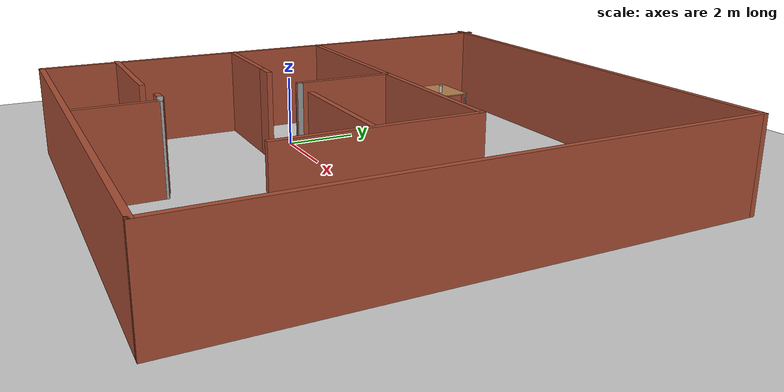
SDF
<sdf version="1.7">
 <world name="default">
  <model name="ground_plane">
   <static>1</static>
   <link name="link">
    <collision name="collision">
     <geometry><plane><normal>0 0 1</normal><size>100 100</size></plane></geometry>
     <surface><friction><ode><mu>100</mu><mu2>50</mu2></ode></friction></surface>
    </collision>
    <visual name="visual">
     <cast_shadows>0</cast_shadows>
     <geometry><plane><normal>0 0 1</normal><size>100 100</size></plane></geometry>
     <material>
      <script><uri>file://media/materials/scripts/gazebo.material</uri><name>Gazebo/Grey</name></script>
     </material>
    </visual>
   </link>
  </model>
  <model name="test">
   <pose>3.88587 0.535286 0 0 -0 0</pose>
   <link name="Wall_1">
    <collision name="Wall_1_Collision">
     <geometry><box><size>2.75 0.15 2.5</size></box></geometry>
     <pose>0 0 1.25 0 -0 0</pose>
    </collision>
    <visual name="Wall_1_Visual">
     <pose>0 0 1.25 0 -0 0</pose>
     <geometry><box><size>2.75 0.15 2.5</size></box></geometry>
     <material>
      <script><uri>file://media/materials/scripts/gazebo.material</uri><name>Gazebo/Bricks</name></script>
      <ambient>1 1 1 1</ambient>
     </material>
     <meta><layer>0</layer></meta>
    </visual>
    <pose>-4.75 -1.55 0 0 -0 3.14159</pose>
   </link>
   <link name="Wall_10">
    <collision name="Wall_10_Collision">
     <geometry><box><size>12.5 0.15 2.5</size></box></geometry>
     <pose>0 0 1.25 0 -0 0</pose>
    </collision>
    <visual name="Wall_10_Visual">
     <pose>0 0 1.25 0 -0 0</pose>
     <geometry><box><size>12.5 0.15 2.5</size></box></geometry>
     <material>
      <script><uri>file://media/materials/scripts/gazebo.material</uri><name>Gazebo/Bricks</name></script>
      <ambient>1 1 1 1</ambient>
     </material>
     <meta><layer>0</layer></meta>
    </visual>
    <pose>0.125 -7.15 0 0 -0 0</pose>
   </link>
   <link name="Wall_11">
    <collision name="Wall_11_Collision">
     <geometry><box><size>14.25 0.15 2.5</size></box></geometry>
     <pose>0 0 1.25 0 -0 0</pose>
    </collision>
    <visual name="Wall_11_Visual">
     <pose>0 0 1.25 0 -0 0</pose>
     <geometry><box><size>14.25 0.15 2.5</size></box></geometry>
     <material>
      <script><uri>file://media/materials/scripts/gazebo.material</uri><name>Gazebo/Bricks</name></script>
      <ambient>1 1 1 1</ambient>
     </material>
     <meta><layer>0</layer></meta>
    </visual>
    <pose>6.3 -0.1 0 0 -0 1.5708</pose>
   </link>
   <link name="Wall_12">
    <collision name="Wall_12_Collision">
     <geometry><box><size>12.75 0.15 2.5</size></box></geometry>
     <pose>0 0 1.25 0 -0 0</pose>
    </collision>
    <visual name="Wall_12_Visual">
     <pose>0 0 1.25 0 -0 0</pose>
     <geometry><box><size>12.75 0.15 2.5</size></box></geometry>
     <material>
      <script><uri>file://media/materials/scripts/gazebo.material</uri><name>Gazebo/Bricks</name></script>
      <ambient>1 1 1 1</ambient>
     </material>
     <meta><layer>0</layer></meta>
    </visual>
    <pose>-0 6.95 0 0 -0 3.14159</pose>
   </link>
   <link name="Wall_14">
    <collision name="Wall_14_Collision">
     <geometry><box><size>6 0.15 2.5</size></box></geometry>
     <pose>0 0 1.25 0 -0 0</pose>
    </collision>
    <visual name="Wall_14_Visual">
     <pose>0 0 1.25 0 -0 0</pose>
     <geometry><box><size>6 0.15 2.5</size></box></geometry>
     <material>
      <script><uri>file://media/materials/scripts/gazebo.material</uri><name>Gazebo/Bricks</name></script>
      <ambient>1 1 1 1</ambient>
     </material>
     <meta><layer>0</layer></meta>
    </visual>
    <pose>-6.05 4.225 0 0 -0 1.5708</pose>
   </link>
   <link name="Wall_16">
    <collision name="Wall_16_Collision">
     <geometry><box><size>0.75 0.15 2.5</size></box></geometry>
     <pose>0 0 1.25 0 -0 0</pose>
    </collision>
    <visual name="Wall_16_Visual">
     <pose>0 0 1.25 0 -0 0</pose>
     <geometry><box><size>0.75 0.15 2.5</size></box></geometry>
     <material>
      <script><uri>file://media/materials/scripts/gazebo.material</uri><name>Gazebo/Bricks</name></script>
      <ambient>1 1 1 1</ambient>
     </material>
     <meta><layer>0</layer></meta>
    </visual>
    <pose>-3.15 -1.55 0 0 -0 0</pose>
   </link>
   <link name="Wall_18">
    <collision name="Wall_18_Collision">
     <geometry><box><size>3.5 0.15 2.5</size></box></geometry>
     <pose>0 0 1.25 0 -0 0</pose>
    </collision>
    <visual name="Wall_18_Visual">
     <pose>0 0 1.25 0 -0 0</pose>
     <geometry><box><size>3.5 0.15 2.5</size></box></geometry>
     <material>
      <script><uri>file://media/materials/scripts/gazebo.material</uri><name>Gazebo/Bricks</name></script>
      <ambient>1 1 1 1</ambient>
     </material>
     <meta><layer>0</layer></meta>
    </visual>
    <pose>1.62011 -1.42426 0 0 -0 3.14159</pose>
   </link>
   <link name="Wall_2">
    <collision name="Wall_2_Collision">
     <geometry><box><size>3 0.15 2.5</size></box></geometry>
     <pose>0 0 1.25 0 -0 0</pose>
    </collision>
    <visual name="Wall_2_Visual">
     <pose>0 0 1.25 0 -0 0</pose>
     <geometry><box><size>3 0.15 2.5</size></box></geometry>
     <material>
      <script><uri>file://media/materials/scripts/gazebo.material</uri><name>Gazebo/Bricks</name></script>
      <ambient>1 1 1 1</ambient>
     </material>
     <meta><layer>0</layer></meta>
    </visual>
    <pose>-6.05 -0.125 0 0 -0 1.5708</pose>
   </link>
   <link name="Wall_20">
    <collision name="Wall_20_Collision">
     <geometry><box><size>0.15 0.15 2.5</size></box></geometry>
     <pose>0 0 1.25 0 -0 0</pose>
    </collision>
    <visual name="Wall_20_Visual">
     <pose>0 0 1.25 0 -0 0</pose>
     <geometry><box><size>0.15 0.15 2.5</size></box></geometry>
     <material>
      <script><uri>file://media/materials/scripts/gazebo.material</uri><name>Gazebo/Grey</name></script>
      <ambient>1 1 1 1</ambient>
     </material>
     <meta><layer>0</layer></meta>
    </visual>
    <pose>-1.2 -1.3 0 0 -0 0</pose>
   </link>
   <link name="Wall_22">
    <collision name="Wall_22_Collision">
     <geometry><box><size>3.5 0.15 2.5</size></box></geometry>
     <pose>0 0 1.25 0 -0 0</pose>
    </collision>
    <visual name="Wall_22_Visual">
     <pose>0 0 1.25 0 -0 0</pose>
     <geometry><box><size>3.5 0.15 2.5</size></box></geometry>
     <material>
      <script><uri>file://media/materials/scripts/gazebo.material</uri><name>Gazebo/Bricks</name></script>
      <ambient>1 1 1 1</ambient>
     </material>
     <meta><layer>0</layer></meta>
    </visual>
    <pose>-4.48918 -5.04855 0 0 -0 0</pose>
   </link>
   <link name="Wall_25">
    <collision name="Wall_25_Collision">
     <geometry><box><size>2.25 0.15 2.5</size></box></geometry>
     <pose>0 0 1.25 0 -0 0</pose>
    </collision>
    <visual name="Wall_25_Visual">
     <pose>0 0 1.25 0 -0 0</pose>
     <geometry><box><size>2.25 0.15 2.5</size></box></geometry>
     <material>
      <script><uri>file://media/materials/scripts/gazebo.material</uri><name>Gazebo/Bricks</name></script>
      <ambient>1 1 1 1</ambient>
     </material>
     <meta><layer>0</layer></meta>
    </visual>
    <pose>-0.904959 -6.06179 0 0 -0 1.5708</pose>
   </link>
   <link name="Wall_26">
    <collision name="Wall_26_Collision">
     <geometry><box><size>0.5 0.15 2.5</size></box></geometry>
     <pose>0 0 1.25 0 -0 0</pose>
    </collision>
    <visual name="Wall_26_Visual">
     <pose>0 0 1.25 0 -0 0</pose>
     <geometry><box><size>0.5 0.15 2.5</size></box></geometry>
     <material>
      <script><uri>file://media/materials/scripts/gazebo.material</uri><name>Gazebo/Grey</name></script>
      <ambient>1 1 1 1</ambient>
     </material>
     <meta><layer>0</layer></meta>
    </visual>
    <pose>-1.074 -4.96649 0 0 -0 2.87979</pose>
   </link>
   <link name="Wall_27">
    <collision name="Wall_27_Collision">
     <geometry><box><size>0.5 0.15 2.5</size></box></geometry>
     <pose>0 0 1.25 0 -0 0</pose>
    </collision>
    <visual name="Wall_27_Visual">
     <pose>0 0 1.25 0 -0 0</pose>
     <geometry><box><size>0.5 0.15 2.5</size></box></geometry>
     <material>
      <script><uri>file://media/materials/scripts/gazebo.material</uri><name>Gazebo/Bricks</name></script>
      <ambient>1 1 1 1</ambient>
     </material>
     <meta><layer>0</layer></meta>
    </visual>
    <pose>-1.41803 -4.9212 0 0 -0 3.14159</pose>
   </link>
   <link name="Wall_3">
    <collision name="Wall_3_Collision">
     <geometry><box><size>5 0.15 2.5</size></box></geometry>
     <pose>0 0 1.25 0 -0 0</pose>
    </collision>
    <visual name="Wall_3_Visual">
     <pose>0 0 1.25 0 -0 0</pose>
     <geometry><box><size>5 0.15 2.5</size></box></geometry>
     <material>
      <script><uri>file://media/materials/scripts/gazebo.material</uri><name>Gazebo/Bricks</name></script>
      <ambient>1 1 1 1</ambient>
     </material>
     <meta><layer>0</layer></meta>
    </visual>
    <pose>-3.625 1.3 0 0 -0 0</pose>
   </link>
   <link name="Wall_4">
    <collision name="Wall_4_Collision">
     <geometry><box><size>2.75 0.15 2.5</size></box></geometry>
     <pose>0 0 1.25 0 -0 0</pose>
    </collision>
    <visual name="Wall_4_Visual">
     <pose>0 0 1.25 0 -0 0</pose>
     <geometry><box><size>2.75 0.15 2.5</size></box></geometry>
     <material>
      <script><uri>file://media/materials/scripts/gazebo.material</uri><name>Gazebo/Bricks</name></script>
      <ambient>1 1 1 1</ambient>
     </material>
     <meta><layer>0</layer></meta>
    </visual>
    <pose>-1.2 0 0 0 -0 -1.5708</pose>
   </link>
   <link name="Wall_6">
    <collision name="Wall_6_Collision">
     <geometry><box><size>4.75 0.15 2.5</size></box></geometry>
     <pose>0 0 1.25 0 -0 0</pose>
    </collision>
    <visual name="Wall_6_Visual">
     <pose>0 0 1.25 0 -0 0</pose>
     <geometry><box><size>4.75 0.15 2.5</size></box></geometry>
     <material>
      <script><uri>file://media/materials/scripts/gazebo.material</uri><name>Gazebo/Bricks</name></script>
      <ambient>1 1 1 1</ambient>
     </material>
     <meta><layer>0</layer></meta>
    </visual>
    <pose>1.1 1.3 0 0 -0 0</pose>
   </link>
   <link name="Wall_7">
    <collision name="Wall_7_Collision">
     <geometry><box><size>5.25 0.15 2.5</size></box></geometry>
     <pose>0 0 1.25 0 -0 0</pose>
    </collision>
    <visual name="Wall_7_Visual">
     <pose>0 0 1.25 0 -0 0</pose>
     <geometry><box><size>5.25 0.15 2.5</size></box></geometry>
     <material>
      <script><uri>file://media/materials/scripts/gazebo.material</uri><name>Gazebo/Bricks</name></script>
      <ambient>1 1 1 1</ambient>
     </material>
     <meta><layer>0</layer></meta>
    </visual>
    <pose>3.4 -1.25 0 0 -0 -1.5708</pose>
   </link>
   <link name="Wall_9">
    <collision name="Wall_9_Collision">
     <geometry><box><size>5.75 0.15 2.5</size></box></geometry>
     <pose>0 0 1.25 0 -0 0</pose>
    </collision>
    <visual name="Wall_9_Visual">
     <pose>0 0 1.25 0 -0 0</pose>
     <geometry><box><size>5.75 0.15 2.5</size></box></geometry>
     <material>
      <script><uri>file://media/materials/scripts/gazebo.material</uri><name>Gazebo/Bricks</name></script>
      <ambient>1 1 1 1</ambient>
     </material>
     <meta><layer>0</layer></meta>
    </visual>
    <pose>-6.05 -4.35 0 0 -0 -1.5708</pose>
   </link>
   <static>1</static>
  </model>
  <model name="table">
   <static>1</static>
   <link name="link">
    <collision name="surface">
     <pose>0 0 1 0 -0 0</pose>
     <geometry><box><size>1.5 0.8 0.03</size></box></geometry>
     <surface><friction><ode><mu>0.6</mu><mu2>0.6</mu2></ode></friction></surface>
    </collision>
    <visual name="visual1">
     <pose>0 0 1 0 -0 0</pose>
     <geometry><box><size>1.5 0.8 0.03</size></box></geometry>
     <material>
      <script><uri>file://media/materials/scripts/gazebo.material</uri><name>Gazebo/Wood</name></script>
     </material>
    </visual>
    <collision name="front_left_leg">
     <pose>0.68 0.38 0.5 0 -0 0</pose>
     <geometry><cylinder><radius>0.02</radius><length>1</length></cylinder></geometry>
    </collision>
    <visual name="front_left_leg">
     <pose>0.68 0.38 0.5 0 -0 0</pose>
     <geometry><cylinder><radius>0.02</radius><length>1</length></cylinder></geometry>
     <material>
      <script><uri>file://media/materials/scripts/gazebo.material</uri><name>Gazebo/Grey</name></script>
     </material>
    </visual>
    <collision name="front_right_leg">
     <pose>0.68 -0.38 0.5 0 -0 0</pose>
     <geometry><cylinder><radius>0.02</radius><length>1</length></cylinder></geometry>
    </collision>
    <visual name="front_right_leg">
     <pose>0.68 -0.38 0.5 0 -0 0</pose>
     <geometry><cylinder><radius>0.02</radius><length>1</length></cylinder></geometry>
     <material>
      <script><uri>file://media/materials/scripts/gazebo.material</uri><name>Gazebo/Grey</name></script>
     </material>
    </visual>
    <collision name="back_right_leg">
     <pose>-0.68 -0.38 0.5 0 -0 0</pose>
     <geometry><cylinder><radius>0.02</radius><length>1</length></cylinder></geometry>
    </collision>
    <visual name="back_right_leg">
     <pose>-0.68 -0.38 0.5 0 -0 0</pose>
     <geometry><cylinder><radius>0.02</radius><length>1</length></cylinder></geometry>
     <material>
      <script><uri>file://media/materials/scripts/gazebo.material</uri><name>Gazebo/Grey</name></script>
     </material>
    </visual>
    <collision name="back_left_leg">
     <pose>-0.68 0.38 0.5 0 -0 0</pose>
     <geometry><cylinder><radius>0.02</radius><length>1</length></cylinder></geometry>
    </collision>
    <visual name="back_left_leg">
     <pose>-0.68 0.38 0.5 0 -0 0</pose>
     <geometry><cylinder><radius>0.02</radius><length>1</length></cylinder></geometry>
     <material>
      <script><uri>file://media/materials/scripts/gazebo.material</uri><name>Gazebo/Grey</name></script>
     </material>
    </visual>
   </link>
   <pose>-0.296239 5.55445 0 0 -0 0</pose>
  </model>
  <model name="beer">
   <link name="link">
    <pose>0 0 0.115 0 -0 0</pose>
    <inertial>
     <mass>0.39</mass>
     <inertia><ixx>0.00058</ixx><ixy>0</ixy><ixz>0</ixz><iyy>0.00058</iyy><iyz>0</iyz><izz>0.00019</izz></inertia>
    </inertial>
    <collision name="collision">
     <geometry><cylinder><radius>0.055</radius><length>0.23</length></cylinder></geometry>
    </collision>
    <visual name="visual">
     <geometry><cylinder><radius>0.055</radius><length>0.23</length></cylinder></geometry>
     <material>
      <script>
       <uri>model://beer/materials/scripts</uri>
       <uri>model://beer/materials/textures</uri>
       <name>Beer/Diffuse</name>
      </script>
     </material>
    </visual>
   </link>
   <pose>-0.038822 5.25943 1.015 7e-06 3.8e-05 0.000295</pose>
  </model>
 </world>
</sdf>
